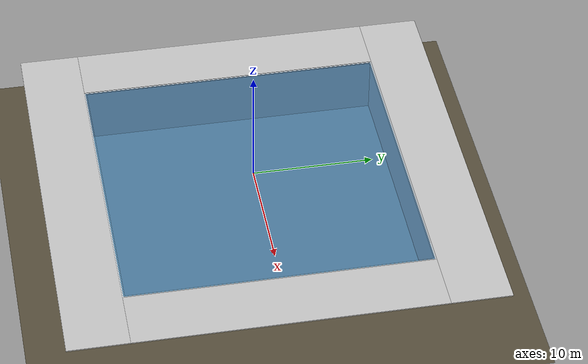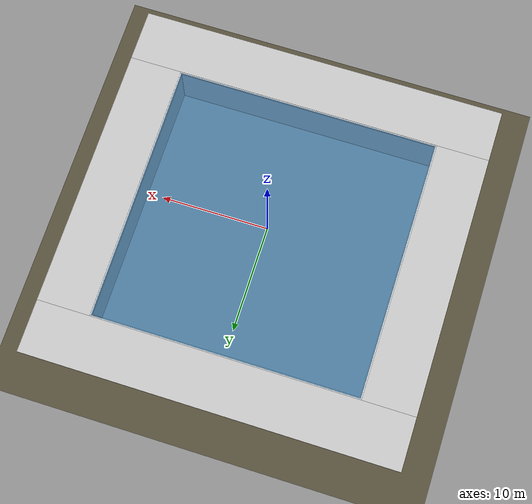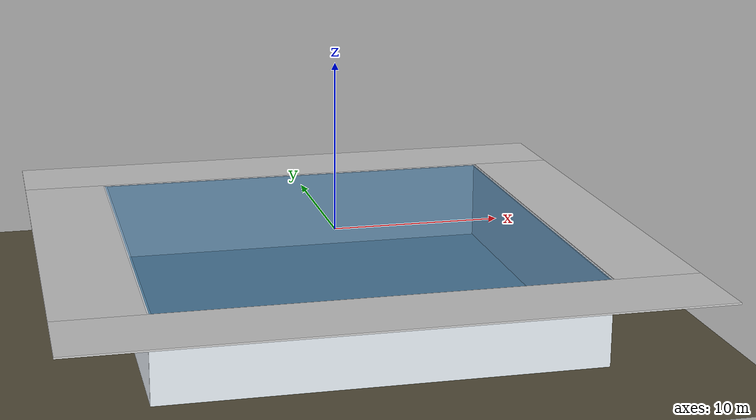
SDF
<sdf version="1.12">
 <world name="blueboat_playground">
  <physics name="4ms" type="ignored">
   <max_step_size>0.004</max_step_size>
   <real_time_factor>1.0</real_time_factor>
  </physics>
  <scene><ambient>0.3 0.6 0.7</ambient><background>0.6 0.85 0.95</background><grid>false</grid></scene>
  <plugin filename="gz-sim-physics-system" name="gz::sim::systems::Physics"/>
  <plugin filename="gz-sim-user-commands-system" name="gz::sim::systems::UserCommands"/>
  <plugin filename="gz-sim-scene-broadcaster-system" name="gz::sim::systems::SceneBroadcaster"/>
  <plugin filename="gz-sim-sensors-system" name="gz::sim::systems::Sensors">
   <render_engine>ogre2</render_engine>
  </plugin>
  <plugin filename="gz-sim-buoyancy-system" name="gz::sim::systems::Buoyancy">
   <graded_buoyancy>
    <default_density>1025</default_density>
    <density_change><above_depth>0</above_depth><density>1</density></density_change>
   </graded_buoyancy>
   <enable>blueboat::hull_displacement</enable>
  </plugin>
  <plugin filename="gz-maritime-ocean-current-system" name="gz::sim::maritime::OceanCurrent">
   <speed>0</speed>
   <direction>0</direction>
  </plugin>
  <light type="directional" name="sun">
   <pose>0 0 10 0 0 0</pose>
   <diffuse>0.8 0.8 0.8 1</diffuse>
   <specular>0.2 0.2 0.2 1</specular>
   <direction>-0.5 0.1 -0.9</direction>
  </light>
  <include><uri>model://pool</uri></include>
  <include><uri>model://deck</uri></include>
  <model name="seabed">
   <static>true</static>
   <pose>0 0 -5 0 0 0</pose>
   <link name="link">
    <collision name="collision">
     <geometry><plane><normal>0 0 1</normal><size>200 200</size></plane></geometry>
    </collision>
    <visual name="visual">
     <geometry><plane><normal>0 0 1</normal><size>200 200</size></plane></geometry>
     <material><ambient>0.30 0.28 0.20 1</ambient><diffuse>0.35 0.32 0.24 1</diffuse></material>
    </visual>
   </link>
  </model>
  <model name="water_surface">
   <static>true</static>
   <link name="link">
    <visual name="visual">
     <transparency>0.4</transparency>
     <geometry><plane><normal>0 0 1</normal><size>24.8 24.8</size></plane></geometry>
     <material>
      <ambient>0.10 0.30 0.50 1</ambient>
      <diffuse>0.10 0.35 0.55 1</diffuse>
      <specular>0.20 0.30 0.40 1</specular>
     </material>
    </visual>
   </link>
  </model>
 </world>
</sdf>

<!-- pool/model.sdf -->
<sdf version="1.12">
  <model name="pool">
    <static>true</static>

    <!-- Pool floor -->
    <model name="floor">
      <pose>0 0 -5 0 0 0</pose>
      <static>true</static>
      <link name="link">
        <collision name="collision">
          <geometry>
            <box>
              <size>25 25 0.2</size>
            </box>
          </geometry>
        </collision>
        <visual name="visual">
          <geometry>
            <box>
              <size>25 25 0.2</size>
            </box>
          </geometry>
          <material>
            <ambient>0.6 0.7 0.75 1</ambient>
            <diffuse>0.7 0.8 0.85 1</diffuse>
            <specular>0.3 0.3 0.3 1</specular>
            <pbr>
              <metal>
                <albedo_map>model://pool/materials/textures/pool_floor.png</albedo_map>
                <normal_map>model://pool/materials/textures/pool_floor_normal.png</normal_map>
                <roughness_map>model://pool/materials/textures/pool_floor_roughness.png</roughness_map>
                <metalness>0.0</metalness>
              </metal>
            </pbr>
          </material>
        </visual>
      </link>
    </model>

    <!-- Pool walls -->
    <model name="walls">
      <static>true</static>
      <link name="link">

        <!-- Wall: +X side (at x=12.55) -->
        <collision name="wall_px_collision">
          <pose>12.55 0 -2.5 0 0 0</pose>
          <geometry>
            <box>
              <size>0.1 25 5</size>
            </box>
          </geometry>
        </collision>
        <visual name="wall_px_visual">
          <pose>12.55 0 -2.5 0 0 0</pose>
          <geometry>
            <box>
              <size>0.1 25 5</size>
            </box>
          </geometry>
          <material>
            <ambient>0.8 0.85 0.9 1</ambient>
            <diffuse>0.9 0.93 0.96 1</diffuse>
            <specular>0.3 0.3 0.3 1</specular>
            <pbr>
              <metal>
                <albedo_map>model://pool/materials/textures/pool_tile.png</albedo_map>
                <normal_map>model://pool/materials/textures/pool_tile_normal.png</normal_map>
                <roughness_map>model://pool/materials/textures/pool_tile_roughness.png</roughness_map>
                <metalness>0.0</metalness>
              </metal>
            </pbr>
          </material>
        </visual>

        <!-- Wall: -X side -->
        <collision name="wall_nx_collision">
          <pose>-12.55 0 -2.5 0 0 0</pose>
          <geometry>
            <box>
              <size>0.1 25 5</size>
            </box>
          </geometry>
        </collision>
        <visual name="wall_nx_visual">
          <pose>-12.55 0 -2.5 0 0 0</pose>
          <geometry>
            <box>
              <size>0.1 25 5</size>
            </box>
          </geometry>
          <material>
            <ambient>0.8 0.85 0.9 1</ambient>
            <diffuse>0.9 0.93 0.96 1</diffuse>
            <specular>0.3 0.3 0.3 1</specular>
            <pbr>
              <metal>
                <albedo_map>model://pool/materials/textures/pool_tile.png</albedo_map>
                <normal_map>model://pool/materials/textures/pool_tile_normal.png</normal_map>
                <roughness_map>model://pool/materials/textures/pool_tile_roughness.png</roughness_map>
                <metalness>0.0</metalness>
              </metal>
            </pbr>
          </material>
        </visual>

        <!-- Wall: +Y side (at y=12.55) -->
        <collision name="wall_py_collision">
          <pose>0 12.55 -2.5 0 0 0</pose>
          <geometry>
            <box>
              <size>25.2 0.1 5</size>
            </box>
          </geometry>
        </collision>
        <visual name="wall_py_visual">
          <pose>0 12.55 -2.5 0 0 0</pose>
          <geometry>
            <box>
              <size>25.2 0.1 5</size>
            </box>
          </geometry>
          <material>
            <ambient>0.8 0.85 0.9 1</ambient>
            <diffuse>0.9 0.93 0.96 1</diffuse>
            <specular>0.3 0.3 0.3 1</specular>
            <pbr>
              <metal>
                <albedo_map>model://pool/materials/textures/pool_tile.png</albedo_map>
                <normal_map>model://pool/materials/textures/pool_tile_normal.png</normal_map>
                <roughness_map>model://pool/materials/textures/pool_tile_roughness.png</roughness_map>
                <metalness>0.0</metalness>
              </metal>
            </pbr>
          </material>
        </visual>

        <!-- Wall: -Y side -->
        <collision name="wall_ny_collision">
          <pose>0 -12.55 -2.5 0 0 0</pose>
          <geometry>
            <box>
              <size>25.2 0.1 5</size>
            </box>
          </geometry>
        </collision>
        <visual name="wall_ny_visual">
          <pose>0 -12.55 -2.5 0 0 0</pose>
          <geometry>
            <box>
              <size>25.2 0.1 5</size>
            </box>
          </geometry>
          <material>
            <ambient>0.8 0.85 0.9 1</ambient>
            <diffuse>0.9 0.93 0.96 1</diffuse>
            <specular>0.3 0.3 0.3 1</specular>
            <pbr>
              <metal>
                <albedo_map>model://pool/materials/textures/pool_tile.png</albedo_map>
                <normal_map>model://pool/materials/textures/pool_tile_normal.png</normal_map>
                <roughness_map>model://pool/materials/textures/pool_tile_roughness.png</roughness_map>
                <metalness>0.0</metalness>
              </metal>
            </pbr>
          </material>
        </visual>

      </link>
    </model>

    <!-- Water volume (visual only - semi-transparent blue) -->
    <model name="water">
      <static>true</static>
      <pose>0 0 -2.505 0 0 0</pose>
      <link name="link">
        <visual name="visual">
          <geometry>
            <box>
              <size>25 25 4.99</size>
            </box>
          </geometry>
          <transparency>0.6</transparency>
          <material>
            <ambient>0.0 0.3 0.5 1</ambient>
            <diffuse>0.0 0.4 0.7 1</diffuse>
            <specular>0.2 0.3 0.4 1</specular>
          </material>
        </visual>
      </link>
    </model>

  </model>
</sdf>

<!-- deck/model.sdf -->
<sdf version="1.12">
  <model name="deck">
    <static>true</static>
    <link name="link">

      <!-- +X deck strip: x from 12.6 to 17.6 -->
      <collision name="deck_px_col">
        <pose>15.1 0 0 0 0 0</pose>
        <geometry><box><size>5.0 25.2 0.1</size></box></geometry>
      </collision>
      <visual name="deck_px_vis">
        <pose>15.1 0 0 0 0 0</pose>
        <geometry><box><size>5.0 25.2 0.1</size></box></geometry>
        <material>
          <ambient>0.7 0.7 0.7 1</ambient>
          <diffuse>0.8 0.8 0.8 1</diffuse>
          <pbr>
            <metal>
              <albedo_map>model://pool/materials/textures/concrete.png</albedo_map>
              <normal_map>model://pool/materials/textures/concrete_normal.png</normal_map>
              <roughness_map>model://pool/materials/textures/concrete_roughness.png</roughness_map>
              <metalness>0.0</metalness>
            </metal>
          </pbr>
        </material>
      </visual>

      <!-- -X deck strip: x from -17.6 to -12.6 -->
      <collision name="deck_nx_col">
        <pose>-15.1 0 0 0 0 0</pose>
        <geometry><box><size>5.0 25.2 0.1</size></box></geometry>
      </collision>
      <visual name="deck_nx_vis">
        <pose>-15.1 0 0 0 0 0</pose>
        <geometry><box><size>5.0 25.2 0.1</size></box></geometry>
        <material>
          <ambient>0.7 0.7 0.7 1</ambient>
          <diffuse>0.8 0.8 0.8 1</diffuse>
          <pbr>
            <metal>
              <albedo_map>model://pool/materials/textures/concrete.png</albedo_map>
              <normal_map>model://pool/materials/textures/concrete_normal.png</normal_map>
              <roughness_map>model://pool/materials/textures/concrete_roughness.png</roughness_map>
              <metalness>0.0</metalness>
            </metal>
          </pbr>
        </material>
      </visual>

      <!-- +Y deck strip: y from 12.6 to 17.6, full width including corners -->
      <collision name="deck_py_col">
        <pose>0 15.1 0 0 0 0</pose>
        <geometry><box><size>35.2 5.0 0.1</size></box></geometry>
      </collision>
      <visual name="deck_py_vis">
        <pose>0 15.1 0 0 0 0</pose>
        <geometry><box><size>35.2 5.0 0.1</size></box></geometry>
        <material>
          <ambient>0.7 0.7 0.7 1</ambient>
          <diffuse>0.8 0.8 0.8 1</diffuse>
          <pbr>
            <metal>
              <albedo_map>model://pool/materials/textures/concrete.png</albedo_map>
              <normal_map>model://pool/materials/textures/concrete_normal.png</normal_map>
              <roughness_map>model://pool/materials/textures/concrete_roughness.png</roughness_map>
              <metalness>0.0</metalness>
            </metal>
          </pbr>
        </material>
      </visual>

      <!-- -Y deck strip: y from -17.6 to -12.6, full width including corners -->
      <collision name="deck_ny_col">
        <pose>0 -15.1 0 0 0 0</pose>
        <geometry><box><size>35.2 5.0 0.1</size></box></geometry>
      </collision>
      <visual name="deck_ny_vis">
        <pose>0 -15.1 0 0 0 0</pose>
        <geometry><box><size>35.2 5.0 0.1</size></box></geometry>
        <material>
          <ambient>0.7 0.7 0.7 1</ambient>
          <diffuse>0.8 0.8 0.8 1</diffuse>
          <pbr>
            <metal>
              <albedo_map>model://pool/materials/textures/concrete.png</albedo_map>
              <normal_map>model://pool/materials/textures/concrete_normal.png</normal_map>
              <roughness_map>model://pool/materials/textures/concrete_roughness.png</roughness_map>
              <metalness>0.0</metalness>
            </metal>
          </pbr>
        </material>
      </visual>

    </link>
  </model>
</sdf>
